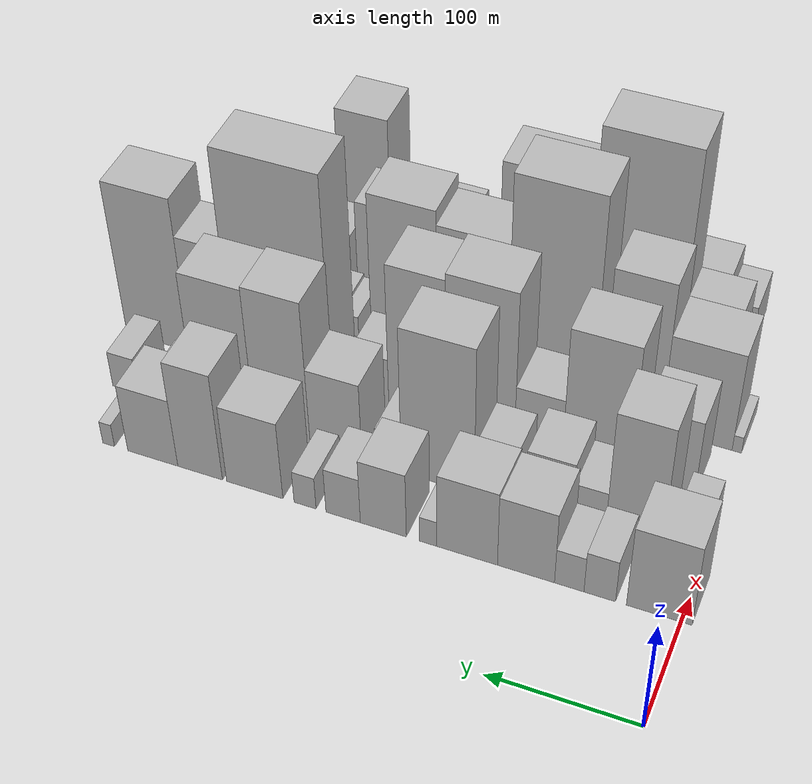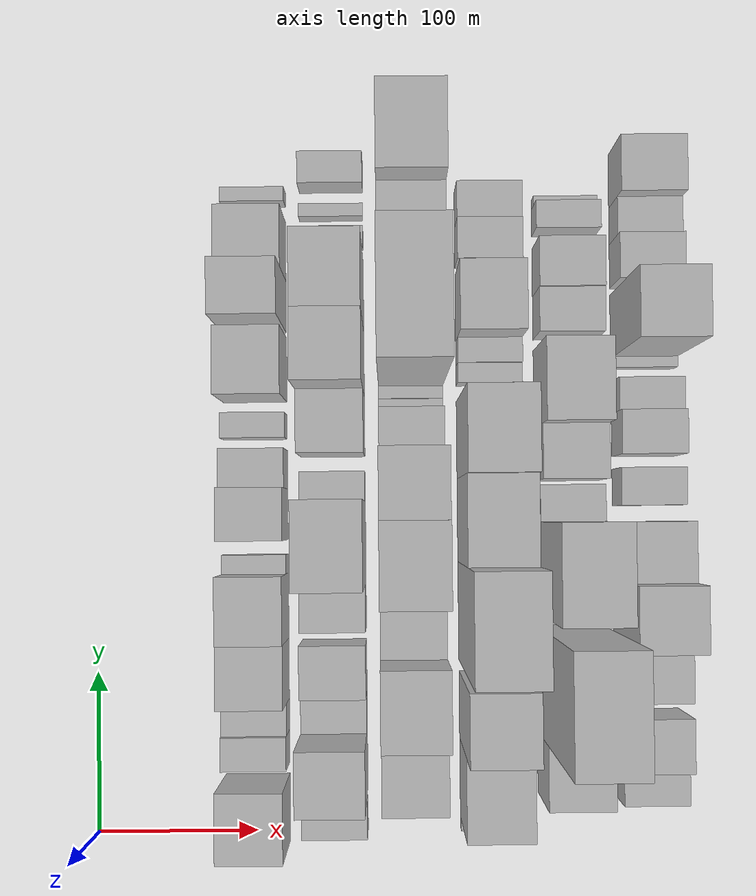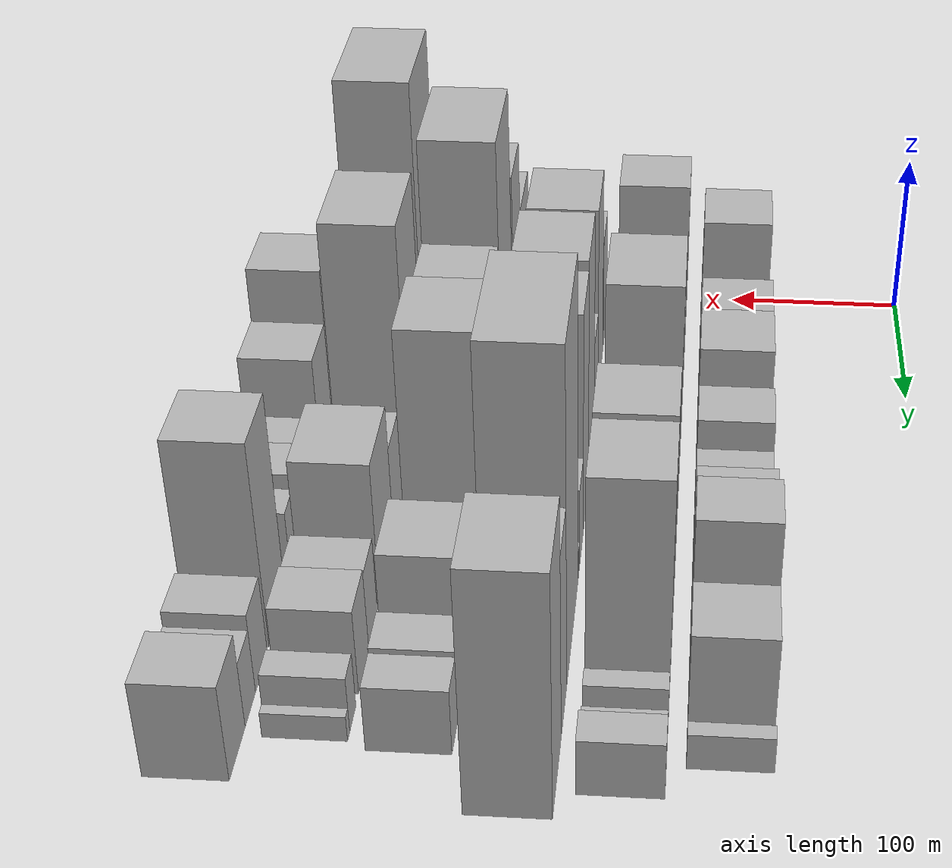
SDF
<sdf version="1.6">
 <world name="default">
  <model name="building_21">
   <static>1</static>
   <pose>100.0000 14.5103 0 0.000000 0.000000 0.000000</pose>
   <link name="link">
    <pose>0 0 37.50 0 0 0</pose>
    <collision name="collision"><geometry><box><size>40.0000 42.1527 75.0000</size></box></geometry></collision>
    <visual name="visual">
     <cast_shadows>0</cast_shadows>
     <geometry><box><size>40.0000 42.1527 75.0000</size></box></geometry>
     <material>
      <script>
       <uri>model://HANNAS_wall/materials/scripts</uri>
       <uri>model://HANNAS_wall/materials/textures</uri>
       <name>vrc/HANNAS_wall</name>
      </script>
     </material>
    </visual>
   </link>
  </model>
  <model name="building_22">
   <static>1</static>
   <pose>100.0000 52.8745 0 0.000000 0.000000 0.000000</pose>
   <link name="link">
    <pose>0 0 19.50 0 0 0</pose>
    <collision name="collision"><geometry><box><size>40.0000 20.5757 39.0000</size></box></geometry></collision>
    <visual name="visual">
     <cast_shadows>0</cast_shadows>
     <geometry><box><size>40.0000 20.5757 39.0000</size></box></geometry>
     <material>
      <script>
       <uri>model://HANNAS_wall/materials/scripts</uri>
       <uri>model://HANNAS_wall/materials/textures</uri>
       <name>vrc/HANNAS_wall</name>
      </script>
     </material>
    </visual>
   </link>
  </model>
  <model name="building_23">
   <static>1</static>
   <pose>100.0000 72.8543 0 0.000000 0.000000 0.000000</pose>
   <link name="link">
    <pose>0 0 16.50 0 0 0</pose>
    <collision name="collision"><geometry><box><size>40.0000 19.3839 33.0000</size></box></geometry></collision>
    <visual name="visual">
     <cast_shadows>0</cast_shadows>
     <geometry><box><size>40.0000 19.3839 33.0000</size></box></geometry>
     <material>
      <script>
       <uri>model://HANNAS_wall/materials/scripts</uri>
       <uri>model://HANNAS_wall/materials/textures</uri>
       <name>vrc/HANNAS_wall</name>
      </script>
     </material>
    </visual>
   </link>
  </model>
  <model name="building_24">
   <static>1</static>
   <pose>100.0000 101.5590 0 0.000000 0.000000 0.000000</pose>
   <link name="link">
    <pose>0 0 33.00 0 0 0</pose>
    <collision name="collision"><geometry><box><size>40.0000 38.0256 66.0000</size></box></geometry></collision>
    <visual name="visual">
     <cast_shadows>0</cast_shadows>
     <geometry><box><size>40.0000 38.0256 66.0000</size></box></geometry>
     <material>
      <script>
       <uri>model://HANNAS_wall/materials/scripts</uri>
       <uri>model://HANNAS_wall/materials/textures</uri>
       <name>vrc/HANNAS_wall</name>
      </script>
     </material>
    </visual>
   </link>
  </model>
  <model name="building_25">
   <static>1</static>
   <pose>100.0000 141.0999 0 0.000000 0.000000 0.000000</pose>
   <link name="link">
    <pose>0 0 34.50 0 0 0</pose>
    <collision name="collision"><geometry><box><size>40.0000 41.0561 69.0000</size></box></geometry></collision>
    <visual name="visual">
     <cast_shadows>0</cast_shadows>
     <geometry><box><size>40.0000 41.0561 69.0000</size></box></geometry>
     <material>
      <script>
       <uri>model://HANNAS_wall/materials/scripts</uri>
       <uri>model://HANNAS_wall/materials/textures</uri>
       <name>vrc/HANNAS_wall</name>
      </script>
     </material>
    </visual>
   </link>
  </model>
  <model name="building_26">
   <static>1</static>
   <pose>100.0000 167.6077 0 0.000000 0.000000 0.000000</pose>
   <link name="link">
    <pose>0 0 12.00 0 0 0</pose>
    <collision name="collision"><geometry><box><size>40.0000 11.9596 24.0000</size></box></geometry></collision>
    <visual name="visual">
     <cast_shadows>0</cast_shadows>
     <geometry><box><size>40.0000 11.9596 24.0000</size></box></geometry>
     <material>
      <script>
       <uri>model://HANNAS_wall/materials/scripts</uri>
       <uri>model://HANNAS_wall/materials/textures</uri>
       <name>vrc/HANNAS_wall</name>
      </script>
     </material>
    </visual>
   </link>
  </model>
  <model name="building_27">
   <static>1</static>
   <pose>100.0000 198.6026 0 0.000000 0.000000 0.000000</pose>
   <link name="link">
    <pose>0 0 30.00 0 0 0</pose>
    <collision name="collision"><geometry><box><size>40.0000 32.0300 60.0000</size></box></geometry></collision>
    <visual name="visual">
     <cast_shadows>0</cast_shadows>
     <geometry><box><size>40.0000 32.0300 60.0000</size></box></geometry>
     <material>
      <script>
       <uri>model://HANNAS_wall/materials/scripts</uri>
       <uri>model://HANNAS_wall/materials/textures</uri>
       <name>vrc/HANNAS_wall</name>
      </script>
     </material>
    </visual>
   </link>
  </model>
  <model name="building_28">
   <static>1</static>
   <pose>100.0000 226.7114 0 0.000000 0.000000 0.000000</pose>
   <link name="link">
    <pose>0 0 21.00 0 0 0</pose>
    <collision name="collision"><geometry><box><size>40.0000 24.1877 42.0000</size></box></geometry></collision>
    <visual name="visual">
     <cast_shadows>0</cast_shadows>
     <geometry><box><size>40.0000 24.1877 42.0000</size></box></geometry>
     <material>
      <script>
       <uri>model://HANNAS_wall/materials/scripts</uri>
       <uri>model://HANNAS_wall/materials/textures</uri>
       <name>vrc/HANNAS_wall</name>
      </script>
     </material>
    </visual>
   </link>
  </model>
  <model name="building_29">
   <static>1</static>
   <pose>100.0000 253.6481 0 0.000000 0.000000 0.000000</pose>
   <link name="link">
    <pose>0 0 15.00 0 0 0</pose>
    <collision name="collision"><geometry><box><size>40.0000 15.6857 30.0000</size></box></geometry></collision>
    <visual name="visual">
     <cast_shadows>0</cast_shadows>
     <geometry><box><size>40.0000 15.6857 30.0000</size></box></geometry>
     <material>
      <script>
       <uri>model://HANNAS_wall/materials/scripts</uri>
       <uri>model://HANNAS_wall/materials/textures</uri>
       <name>vrc/HANNAS_wall</name>
      </script>
     </material>
    </visual>
   </link>
  </model>
  <model name="building_30">
   <static>1</static>
   <pose>100.0000 289.8574 0 0.000000 0.000000 0.000000</pose>
   <link name="link">
    <pose>0 0 36.00 0 0 0</pose>
    <collision name="collision"><geometry><box><size>40.0000 40.7329 72.0000</size></box></geometry></collision>
    <visual name="visual">
     <cast_shadows>0</cast_shadows>
     <geometry><box><size>40.0000 40.7329 72.0000</size></box></geometry>
     <material>
      <script>
       <uri>model://HANNAS_wall/materials/scripts</uri>
       <uri>model://HANNAS_wall/materials/textures</uri>
       <name>vrc/HANNAS_wall</name>
      </script>
     </material>
    </visual>
   </link>
  </model>
  <model name="building_31">
   <static>1</static>
   <pose>100.0000 329.6770 0 0.000000 0.000000 0.000000</pose>
   <link name="link">
    <pose>0 0 49.50 0 0 0</pose>
    <collision name="collision"><geometry><box><size>40.0000 32.9062 99.0000</size></box></geometry></collision>
    <visual name="visual">
     <cast_shadows>0</cast_shadows>
     <geometry><box><size>40.0000 32.9062 99.0000</size></box></geometry>
     <material>
      <script>
       <uri>model://HANNAS_wall/materials/scripts</uri>
       <uri>model://HANNAS_wall/materials/textures</uri>
       <name>vrc/HANNAS_wall</name>
      </script>
     </material>
    </visual>
   </link>
  </model>
  <model name="building_32">
   <static>1</static>
   <pose>100.0000 364.8197 0 0.000000 0.000000 0.000000</pose>
   <link name="link">
    <pose>0 0 31.50 0 0 0</pose>
    <collision name="collision"><geometry><box><size>40.0000 37.3792 63.0000</size></box></geometry></collision>
    <visual name="visual">
     <cast_shadows>0</cast_shadows>
     <geometry><box><size>40.0000 37.3792 63.0000</size></box></geometry>
     <material>
      <script>
       <uri>model://HANNAS_wall/materials/scripts</uri>
       <uri>model://HANNAS_wall/materials/textures</uri>
       <name>vrc/HANNAS_wall</name>
      </script>
     </material>
    </visual>
   </link>
  </model>
  <model name="building_33">
   <static>1</static>
   <pose>100.0000 397.9231 0 0.000000 0.000000 0.000000</pose>
   <link name="link">
    <pose>0 0 10.50 0 0 0</pose>
    <collision name="collision"><geometry><box><size>40.0000 8.8275 21.0000</size></box></geometry></collision>
    <visual name="visual">
     <cast_shadows>0</cast_shadows>
     <geometry><box><size>40.0000 8.8275 21.0000</size></box></geometry>
     <material>
      <script>
       <uri>model://HANNAS_wall/materials/scripts</uri>
       <uri>model://HANNAS_wall/materials/textures</uri>
       <name>vrc/HANNAS_wall</name>
      </script>
     </material>
    </visual>
   </link>
  </model>
  <model name="building_72">
   <static>1</static>
   <pose>149.0000 10.8387 0 0.000000 0.000000 0.000000</pose>
   <link name="link">
    <pose>0 0 18.00 0 0 0</pose>
    <collision name="collision"><geometry><box><size>40.0000 21.0709 36.0000</size></box></geometry></collision>
    <visual name="visual">
     <cast_shadows>0</cast_shadows>
     <geometry><box><size>40.0000 21.0709 36.0000</size></box></geometry>
     <material>
      <script>
       <uri>model://HANNAS_wall/materials/scripts</uri>
       <uri>model://HANNAS_wall/materials/textures</uri>
       <name>vrc/HANNAS_wall</name>
      </script>
     </material>
    </visual>
   </link>
  </model>
  <model name="building_73">
   <static>1</static>
   <pose>149.0000 46.2309 0 0.000000 0.000000 0.000000</pose>
   <link name="link">
    <pose>0 0 57.00 0 0 0</pose>
    <collision name="collision"><geometry><box><size>40.0000 37.7136 114.0000</size></box></geometry></collision>
    <visual name="visual">
     <cast_shadows>0</cast_shadows>
     <geometry><box><size>40.0000 37.7136 114.0000</size></box></geometry>
     <material>
      <script>
       <uri>model://HANNAS_wall/materials/scripts</uri>
       <uri>model://HANNAS_wall/materials/textures</uri>
       <name>vrc/HANNAS_wall</name>
      </script>
     </material>
    </visual>
   </link>
  </model>
  <model name="building_74">
   <static>1</static>
   <pose>149.0000 76.2132 0 0.000000 0.000000 0.000000</pose>
   <link name="link">
    <pose>0 0 19.50 0 0 0</pose>
    <collision name="collision"><geometry><box><size>40.0000 22.2508 39.0000</size></box></geometry></collision>
    <visual name="visual">
     <cast_shadows>0</cast_shadows>
     <geometry><box><size>40.0000 22.2508 39.0000</size></box></geometry>
     <material>
      <script>
       <uri>model://HANNAS_wall/materials/scripts</uri>
       <uri>model://HANNAS_wall/materials/textures</uri>
       <name>vrc/HANNAS_wall</name>
      </script>
     </material>
    </visual>
   </link>
  </model>
  <model name="building_75">
   <static>1</static>
   <pose>149.0000 103.5373 0 0.000000 0.000000 0.000000</pose>
   <link name="link">
    <pose>0 0 28.50 0 0 0</pose>
    <collision name="collision"><geometry><box><size>40.0000 32.3975 57.0000</size></box></geometry></collision>
    <visual name="visual">
     <cast_shadows>0</cast_shadows>
     <geometry><box><size>40.0000 32.3975 57.0000</size></box></geometry>
     <material>
      <script>
       <uri>model://HANNAS_wall/materials/scripts</uri>
       <uri>model://HANNAS_wall/materials/textures</uri>
       <name>vrc/HANNAS_wall</name>
      </script>
     </material>
    </visual>
   </link>
  </model>
  <model name="building_76">
   <static>1</static>
   <pose>149.0000 140.7243 0 0.000000 0.000000 0.000000</pose>
   <link name="link">
    <pose>0 0 24.00 0 0 0</pose>
    <collision name="collision"><geometry><box><size>40.0000 27.9766 48.0000</size></box></geometry></collision>
    <visual name="visual">
     <cast_shadows>0</cast_shadows>
     <geometry><box><size>40.0000 27.9766 48.0000</size></box></geometry>
     <material>
      <script>
       <uri>model://HANNAS_wall/materials/scripts</uri>
       <uri>model://HANNAS_wall/materials/textures</uri>
       <name>vrc/HANNAS_wall</name>
      </script>
     </material>
    </visual>
   </link>
  </model>
  <model name="building_77">
   <static>1</static>
   <pose>149.0000 180.4558 0 0.000000 0.000000 0.000000</pose>
   <link name="link">
    <pose>0 0 67.50 0 0 0</pose>
    <collision name="collision"><geometry><box><size>40.0000 51.4864 135.0000</size></box></geometry></collision>
    <visual name="visual">
     <cast_shadows>0</cast_shadows>
     <geometry><box><size>40.0000 51.4864 135.0000</size></box></geometry>
     <material>
      <script>
       <uri>model://HANNAS_wall/materials/scripts</uri>
       <uri>model://HANNAS_wall/materials/textures</uri>
       <name>vrc/HANNAS_wall</name>
      </script>
     </material>
    </visual>
   </link>
  </model>
  <model name="building_78">
   <static>1</static>
   <pose>149.0000 215.3337 0 0.000000 0.000000 0.000000</pose>
   <link name="link">
    <pose>0 0 18.00 0 0 0</pose>
    <collision name="collision"><geometry><box><size>40.0000 18.2694 36.0000</size></box></geometry></collision>
    <visual name="visual">
     <cast_shadows>0</cast_shadows>
     <geometry><box><size>40.0000 18.2694 36.0000</size></box></geometry>
     <material>
      <script>
       <uri>model://HANNAS_wall/materials/scripts</uri>
       <uri>model://HANNAS_wall/materials/textures</uri>
       <name>vrc/HANNAS_wall</name>
      </script>
     </material>
    </visual>
   </link>
  </model>
  <model name="building_79">
   <static>1</static>
   <pose>149.0000 253.2817 0 0.000000 0.000000 0.000000</pose>
   <link name="link">
    <pose>0 0 36.00 0 0 0</pose>
    <collision name="collision"><geometry><box><size>40.0000 37.6267 72.0000</size></box></geometry></collision>
    <visual name="visual">
     <cast_shadows>0</cast_shadows>
     <geometry><box><size>40.0000 37.6267 72.0000</size></box></geometry>
     <material>
      <script>
       <uri>model://HANNAS_wall/materials/scripts</uri>
       <uri>model://HANNAS_wall/materials/textures</uri>
       <name>vrc/HANNAS_wall</name>
      </script>
     </material>
    </visual>
   </link>
  </model>
  <model name="building_80">
   <static>1</static>
   <pose>149.0000 292.4356 0 0.000000 0.000000 0.000000</pose>
   <link name="link">
    <pose>0 0 66.00 0 0 0</pose>
    <collision name="collision"><geometry><box><size>40.0000 40.6811 132.0000</size></box></geometry></collision>
    <visual name="visual">
     <cast_shadows>0</cast_shadows>
     <geometry><box><size>40.0000 40.6811 132.0000</size></box></geometry>
     <material>
      <script>
       <uri>model://HANNAS_wall/materials/scripts</uri>
       <uri>model://HANNAS_wall/materials/textures</uri>
       <name>vrc/HANNAS_wall</name>
      </script>
     </material>
    </visual>
   </link>
  </model>
  <model name="building_81">
   <static>1</static>
   <pose>149.0000 335.0797 0 0.000000 0.000000 0.000000</pose>
   <link name="link">
    <pose>0 0 64.50 0 0 0</pose>
    <collision name="collision"><geometry><box><size>40.0000 44.6072 129.0000</size></box></geometry></collision>
    <visual name="visual">
     <cast_shadows>0</cast_shadows>
     <geometry><box><size>40.0000 44.6072 129.0000</size></box></geometry>
     <material>
      <script>
       <uri>model://HANNAS_wall/materials/scripts</uri>
       <uri>model://HANNAS_wall/materials/textures</uri>
       <name>vrc/HANNAS_wall</name>
      </script>
     </material>
    </visual>
   </link>
  </model>
  <model name="building_82">
   <static>1</static>
   <pose>149.0000 371.2219 0 0.000000 0.000000 0.000000</pose>
   <link name="link">
    <pose>0 0 12.00 0 0 0</pose>
    <collision name="collision"><geometry><box><size>40.0000 11.6770 24.0000</size></box></geometry></collision>
    <visual name="visual">
     <cast_shadows>0</cast_shadows>
     <geometry><box><size>40.0000 11.6770 24.0000</size></box></geometry>
     <material>
      <script>
       <uri>model://HANNAS_wall/materials/scripts</uri>
       <uri>model://HANNAS_wall/materials/textures</uri>
       <name>vrc/HANNAS_wall</name>
      </script>
     </material>
    </visual>
   </link>
  </model>
  <model name="building_83">
   <static>1</static>
   <pose>149.0000 388.0791 0 0.000000 0.000000 0.000000</pose>
   <link name="link">
    <pose>0 0 9.00 0 0 0</pose>
    <collision name="collision"><geometry><box><size>40.0000 8.0374 18.0000</size></box></geometry></collision>
    <visual name="visual">
     <cast_shadows>0</cast_shadows>
     <geometry><box><size>40.0000 8.0374 18.0000</size></box></geometry>
     <material>
      <script>
       <uri>model://HANNAS_wall/materials/scripts</uri>
       <uri>model://HANNAS_wall/materials/textures</uri>
       <name>vrc/HANNAS_wall</name>
      </script>
     </material>
    </visual>
   </link>
  </model>
  <model name="building_84">
   <static>1</static>
   <pose>149.0000 411.8513 0 0.000000 0.000000 0.000000</pose>
   <link name="link">
    <pose>0 0 16.50 0 0 0</pose>
    <collision name="collision"><geometry><box><size>40.0000 19.5070 33.0000</size></box></geometry></collision>
    <visual name="visual">
     <cast_shadows>0</cast_shadows>
     <geometry><box><size>40.0000 19.5070 33.0000</size></box></geometry>
     <material>
      <script>
       <uri>model://HANNAS_wall/materials/scripts</uri>
       <uri>model://HANNAS_wall/materials/textures</uri>
       <name>vrc/HANNAS_wall</name>
      </script>
     </material>
    </visual>
   </link>
  </model>
  <model name="building_120">
   <static>1</static>
   <pose>198.0000 39.0293 0 0.000000 0.000000 0.000000</pose>
   <link name="link">
    <pose>0 0 36.00 0 0 0</pose>
    <collision name="collision"><geometry><box><size>40.0000 38.1340 72.0000</size></box></geometry></collision>
    <visual name="visual">
     <cast_shadows>0</cast_shadows>
     <geometry><box><size>40.0000 38.1340 72.0000</size></box></geometry>
     <material>
      <script>
       <uri>model://HANNAS_wall/materials/scripts</uri>
       <uri>model://HANNAS_wall/materials/textures</uri>
       <name>vrc/HANNAS_wall</name>
      </script>
     </material>
    </visual>
   </link>
  </model>
  <model name="building_121">
   <static>1</static>
   <pose>198.0000 87.4990 0 0.000000 0.000000 0.000000</pose>
   <link name="link">
    <pose>0 0 61.50 0 0 0</pose>
    <collision name="collision"><geometry><box><size>40.0000 46.8054 123.0000</size></box></geometry></collision>
    <visual name="visual">
     <cast_shadows>0</cast_shadows>
     <geometry><box><size>40.0000 46.8054 123.0000</size></box></geometry>
     <material>
      <script>
       <uri>model://HANNAS_wall/materials/scripts</uri>
       <uri>model://HANNAS_wall/materials/textures</uri>
       <name>vrc/HANNAS_wall</name>
      </script>
     </material>
    </visual>
   </link>
  </model>
  <model name="building_122">
   <static>1</static>
   <pose>198.0000 127.7817 0 0.000000 0.000000 0.000000</pose>
   <link name="link">
    <pose>0 0 28.50 0 0 0</pose>
    <collision name="collision"><geometry><box><size>40.0000 33.7601 57.0000</size></box></geometry></collision>
    <visual name="visual">
     <cast_shadows>0</cast_shadows>
     <geometry><box><size>40.0000 33.7601 57.0000</size></box></geometry>
     <material>
      <script>
       <uri>model://HANNAS_wall/materials/scripts</uri>
       <uri>model://HANNAS_wall/materials/textures</uri>
       <name>vrc/HANNAS_wall</name>
      </script>
     </material>
    </visual>
   </link>
  </model>
  <model name="building_123">
   <static>1</static>
   <pose>198.0000 169.4334 0 0.000000 0.000000 0.000000</pose>
   <link name="link">
    <pose>0 0 70.50 0 0 0</pose>
    <collision name="collision"><geometry><box><size>40.0000 49.5433 141.0000</size></box></geometry></collision>
    <visual name="visual">
     <cast_shadows>0</cast_shadows>
     <geometry><box><size>40.0000 49.5433 141.0000</size></box></geometry>
     <material>
      <script>
       <uri>model://HANNAS_wall/materials/scripts</uri>
       <uri>model://HANNAS_wall/materials/textures</uri>
       <name>vrc/HANNAS_wall</name>
      </script>
     </material>
    </visual>
   </link>
  </model>
  <model name="building_124">
   <static>1</static>
   <pose>198.0000 214.8107 0 0.000000 0.000000 0.000000</pose>
   <link name="link">
    <pose>0 0 67.50 0 0 0</pose>
    <collision name="collision"><geometry><box><size>40.0000 41.2113 135.0000</size></box></geometry></collision>
    <visual name="visual">
     <cast_shadows>0</cast_shadows>
     <geometry><box><size>40.0000 41.2113 135.0000</size></box></geometry>
     <material>
      <script>
       <uri>model://HANNAS_wall/materials/scripts</uri>
       <uri>model://HANNAS_wall/materials/textures</uri>
       <name>vrc/HANNAS_wall</name>
      </script>
     </material>
    </visual>
   </link>
  </model>
  <model name="building_125">
   <static>1</static>
   <pose>198.0000 249.1405 0 0.000000 0.000000 0.000000</pose>
   <link name="link">
    <pose>0 0 24.00 0 0 0</pose>
    <collision name="collision"><geometry><box><size>40.0000 27.4482 48.0000</size></box></geometry></collision>
    <visual name="visual">
     <cast_shadows>0</cast_shadows>
     <geometry><box><size>40.0000 27.4482 48.0000</size></box></geometry>
     <material>
      <script>
       <uri>model://HANNAS_wall/materials/scripts</uri>
       <uri>model://HANNAS_wall/materials/textures</uri>
       <name>vrc/HANNAS_wall</name>
      </script>
     </material>
    </visual>
   </link>
  </model>
  <model name="building_126">
   <static>1</static>
   <pose>198.0000 266.3670 0 0.000000 0.000000 0.000000</pose>
   <link name="link">
    <pose>0 0 7.50 0 0 0</pose>
    <collision name="collision"><geometry><box><size>40.0000 7.0048 15.0000</size></box></geometry></collision>
    <visual name="visual">
     <cast_shadows>0</cast_shadows>
     <geometry><box><size>40.0000 7.0048 15.0000</size></box></geometry>
     <material>
      <script>
       <uri>model://HANNAS_wall/materials/scripts</uri>
       <uri>model://HANNAS_wall/materials/textures</uri>
       <name>vrc/HANNAS_wall</name>
      </script>
     </material>
    </visual>
   </link>
  </model>
  <model name="building_127">
   <static>1</static>
   <pose>198.0000 273.7601 0 0.000000 0.000000 0.000000</pose>
   <link name="link">
    <pose>0 0 9.00 0 0 0</pose>
    <collision name="collision"><geometry><box><size>40.0000 7.7813 18.0000</size></box></geometry></collision>
    <visual name="visual">
     <cast_shadows>0</cast_shadows>
     <geometry><box><size>40.0000 7.7813 18.0000</size></box></geometry>
     <material>
      <script>
       <uri>model://HANNAS_wall/materials/scripts</uri>
       <uri>model://HANNAS_wall/materials/textures</uri>
       <name>vrc/HANNAS_wall</name>
      </script>
     </material>
    </visual>
   </link>
  </model>
  <model name="building_128">
   <static>1</static>
   <pose>198.0000 315.2193 0 0.000000 0.000000 0.000000</pose>
   <link name="link">
    <pose>0 0 97.50 0 0 0</pose>
    <collision name="collision"><geometry><box><size>40.0000 75.1371 195.0000</size></box></geometry></collision>
    <visual name="visual">
     <cast_shadows>0</cast_shadows>
     <geometry><box><size>40.0000 75.1371 195.0000</size></box></geometry>
     <material>
      <script>
       <uri>model://HANNAS_wall/materials/scripts</uri>
       <uri>model://HANNAS_wall/materials/textures</uri>
       <name>vrc/HANNAS_wall</name>
      </script>
     </material>
    </visual>
   </link>
  </model>
  <model name="building_129">
   <static>1</static>
   <pose>198.0000 369.8633 0 0.000000 0.000000 0.000000</pose>
   <link name="link">
    <pose>0 0 54.00 0 0 0</pose>
    <collision name="collision"><geometry><box><size>40.0000 34.1508 108.0000</size></box></geometry></collision>
    <visual name="visual">
     <cast_shadows>0</cast_shadows>
     <geometry><box><size>40.0000 34.1508 108.0000</size></box></geometry>
     <material>
      <script>
       <uri>model://HANNAS_wall/materials/scripts</uri>
       <uri>model://HANNAS_wall/materials/textures</uri>
       <name>vrc/HANNAS_wall</name>
      </script>
     </material>
    </visual>
   </link>
  </model>
  <model name="building_130">
   <static>1</static>
   <pose>198.0000 412.0081 0 0.000000 0.000000 0.000000</pose>
   <link name="link">
    <pose>0 0 70.50 0 0 0</pose>
    <collision name="collision"><geometry><box><size>40.0000 50.1387 141.0000</size></box></geometry></collision>
    <visual name="visual">
     <cast_shadows>0</cast_shadows>
     <geometry><box><size>40.0000 50.1387 141.0000</size></box></geometry>
     <material>
      <script>
       <uri>model://HANNAS_wall/materials/scripts</uri>
       <uri>model://HANNAS_wall/materials/textures</uri>
       <name>vrc/HANNAS_wall</name>
      </script>
     </material>
    </visual>
   </link>
  </model>
  <model name="building_167">
   <static>1</static>
   <pose>247.0000 4.3989 0 0.000000 0.000000 0.000000</pose>
   <link name="link">
    <pose>0 0 7.50 0 0 0</pose>
    <collision name="collision"><geometry><box><size>40.0000 6.5376 15.0000</size></box></geometry></collision>
    <visual name="visual">
     <cast_shadows>0</cast_shadows>
     <geometry><box><size>40.0000 6.5376 15.0000</size></box></geometry>
     <material>
      <script>
       <uri>model://HANNAS_wall/materials/scripts</uri>
       <uri>model://HANNAS_wall/materials/textures</uri>
       <name>vrc/HANNAS_wall</name>
      </script>
     </material>
    </visual>
   </link>
  </model>
  <model name="building_168">
   <static>1</static>
   <pose>247.0000 32.4849 0 0.000000 0.000000 0.000000</pose>
   <link name="link">
    <pose>0 0 45.00 0 0 0</pose>
    <collision name="collision"><geometry><box><size>40.0000 49.6343 90.0000</size></box></geometry></collision>
    <visual name="visual">
     <cast_shadows>0</cast_shadows>
     <geometry><box><size>40.0000 49.6343 90.0000</size></box></geometry>
     <material>
      <script>
       <uri>model://HANNAS_wall/materials/scripts</uri>
       <uri>model://HANNAS_wall/materials/textures</uri>
       <name>vrc/HANNAS_wall</name>
      </script>
     </material>
    </visual>
   </link>
  </model>
  <model name="building_169">
   <static>1</static>
   <pose>247.0000 78.1882 0 0.000000 0.000000 0.000000</pose>
   <link name="link">
    <pose>0 0 67.50 0 0 0</pose>
    <collision name="collision"><geometry><box><size>40.0000 41.7725 135.0000</size></box></geometry></collision>
    <visual name="visual">
     <cast_shadows>0</cast_shadows>
     <geometry><box><size>40.0000 41.7725 135.0000</size></box></geometry>
     <material>
      <script>
       <uri>model://HANNAS_wall/materials/scripts</uri>
       <uri>model://HANNAS_wall/materials/textures</uri>
       <name>vrc/HANNAS_wall</name>
      </script>
     </material>
    </visual>
   </link>
  </model>
  <model name="building_170">
   <static>1</static>
   <pose>247.0000 136.9086 0 0.000000 0.000000 0.000000</pose>
   <link name="link">
    <pose>0 0 96.00 0 0 0</pose>
    <collision name="collision"><geometry><box><size>40.0000 61.6683 192.0000</size></box></geometry></collision>
    <visual name="visual">
     <cast_shadows>0</cast_shadows>
     <geometry><box><size>40.0000 61.6683 192.0000</size></box></geometry>
     <material>
      <script>
       <uri>model://HANNAS_wall/materials/scripts</uri>
       <uri>model://HANNAS_wall/materials/textures</uri>
       <name>vrc/HANNAS_wall</name>
      </script>
     </material>
    </visual>
   </link>
  </model>
  <model name="building_171">
   <static>1</static>
   <pose>247.0000 193.7811 0 0.000000 0.000000 0.000000</pose>
   <link name="link">
    <pose>0 0 66.00 0 0 0</pose>
    <collision name="collision"><geometry><box><size>40.0000 52.0766 132.0000</size></box></geometry></collision>
    <visual name="visual">
     <cast_shadows>0</cast_shadows>
     <geometry><box><size>40.0000 52.0766 132.0000</size></box></geometry>
     <material>
      <script>
       <uri>model://HANNAS_wall/materials/scripts</uri>
       <uri>model://HANNAS_wall/materials/textures</uri>
       <name>vrc/HANNAS_wall</name>
      </script>
     </material>
    </visual>
   </link>
  </model>
  <model name="building_172">
   <static>1</static>
   <pose>247.0000 244.2247 0 0.000000 0.000000 0.000000</pose>
   <link name="link">
    <pose>0 0 72.00 0 0 0</pose>
    <collision name="collision"><geometry><box><size>40.0000 48.8106 144.0000</size></box></geometry></collision>
    <visual name="visual">
     <cast_shadows>0</cast_shadows>
     <geometry><box><size>40.0000 48.8106 144.0000</size></box></geometry>
     <material>
      <script>
       <uri>model://HANNAS_wall/materials/scripts</uri>
       <uri>model://HANNAS_wall/materials/textures</uri>
       <name>vrc/HANNAS_wall</name>
      </script>
     </material>
    </visual>
   </link>
  </model>
  <model name="building_173">
   <static>1</static>
   <pose>247.0000 284.7302 0 0.000000 0.000000 0.000000</pose>
   <link name="link">
    <pose>0 0 13.50 0 0 0</pose>
    <collision name="collision"><geometry><box><size>40.0000 12.2002 27.0000</size></box></geometry></collision>
    <visual name="visual">
     <cast_shadows>0</cast_shadows>
     <geometry><box><size>40.0000 12.2002 27.0000</size></box></geometry>
     <material>
      <script>
       <uri>model://HANNAS_wall/materials/scripts</uri>
       <uri>model://HANNAS_wall/materials/textures</uri>
       <name>vrc/HANNAS_wall</name>
      </script>
     </material>
    </visual>
   </link>
  </model>
  <model name="building_174">
   <static>1</static>
   <pose>247.0000 298.5495 0 0.000000 0.000000 0.000000</pose>
   <link name="link">
    <pose>0 0 15.00 0 0 0</pose>
    <collision name="collision"><geometry><box><size>40.0000 15.4383 30.0000</size></box></geometry></collision>
    <visual name="visual">
     <cast_shadows>0</cast_shadows>
     <geometry><box><size>40.0000 15.4383 30.0000</size></box></geometry>
     <material>
      <script>
       <uri>model://HANNAS_wall/materials/scripts</uri>
       <uri>model://HANNAS_wall/materials/textures</uri>
       <name>vrc/HANNAS_wall</name>
      </script>
     </material>
    </visual>
   </link>
  </model>
  <model name="building_175">
   <static>1</static>
   <pose>247.0000 327.2376 0 0.000000 0.000000 0.000000</pose>
   <link name="link">
    <pose>0 0 36.00 0 0 0</pose>
    <collision name="collision"><geometry><box><size>40.0000 41.9380 72.0000</size></box></geometry></collision>
    <visual name="visual">
     <cast_shadows>0</cast_shadows>
     <geometry><box><size>40.0000 41.9380 72.0000</size></box></geometry>
     <material>
      <script>
       <uri>model://HANNAS_wall/materials/scripts</uri>
       <uri>model://HANNAS_wall/materials/textures</uri>
       <name>vrc/HANNAS_wall</name>
      </script>
     </material>
    </visual>
   </link>
  </model>
  <model name="building_176">
   <static>1</static>
   <pose>247.0000 365.7786 0 0.000000 0.000000 0.000000</pose>
   <link name="link">
    <pose>0 0 21.00 0 0 0</pose>
    <collision name="collision"><geometry><box><size>40.0000 25.1439 42.0000</size></box></geometry></collision>
    <visual name="visual">
     <cast_shadows>0</cast_shadows>
     <geometry><box><size>40.0000 25.1439 42.0000</size></box></geometry>
     <material>
      <script>
       <uri>model://HANNAS_wall/materials/scripts</uri>
       <uri>model://HANNAS_wall/materials/textures</uri>
       <name>vrc/HANNAS_wall</name>
      </script>
     </material>
    </visual>
   </link>
  </model>
  <model name="building_177">
   <static>1</static>
   <pose>247.0000 389.7667 0 0.000000 0.000000 0.000000</pose>
   <link name="link">
    <pose>0 0 19.50 0 0 0</pose>
    <collision name="collision"><geometry><box><size>40.0000 22.8322 39.0000</size></box></geometry></collision>
    <visual name="visual">
     <cast_shadows>0</cast_shadows>
     <geometry><box><size>40.0000 22.8322 39.0000</size></box></geometry>
     <material>
      <script>
       <uri>model://HANNAS_wall/materials/scripts</uri>
       <uri>model://HANNAS_wall/materials/textures</uri>
       <name>vrc/HANNAS_wall</name>
      </script>
     </material>
    </visual>
   </link>
  </model>
  <model name="building_217">
   <static>1</static>
   <pose>296.0000 41.6876 0 0.000000 0.000000 0.000000</pose>
   <link name="link">
    <pose>0 0 36.00 0 0 0</pose>
    <collision name="collision"><geometry><box><size>40.0000 38.6301 72.0000</size></box></geometry></collision>
    <visual name="visual">
     <cast_shadows>0</cast_shadows>
     <geometry><box><size>40.0000 38.6301 72.0000</size></box></geometry>
     <material>
      <script>
       <uri>model://HANNAS_wall/materials/scripts</uri>
       <uri>model://HANNAS_wall/materials/textures</uri>
       <name>vrc/HANNAS_wall</name>
      </script>
     </material>
    </visual>
   </link>
  </model>
  <model name="building_218">
   <static>1</static>
   <pose>296.0000 94.2901 0 0.000000 0.000000 0.000000</pose>
   <link name="link">
    <pose>0 0 102.00 0 0 0</pose>
    <collision name="collision"><geometry><box><size>40.0000 66.5749 204.0000</size></box></geometry></collision>
    <visual name="visual">
     <cast_shadows>0</cast_shadows>
     <geometry><box><size>40.0000 66.5749 204.0000</size></box></geometry>
     <material>
      <script>
       <uri>model://HANNAS_wall/materials/scripts</uri>
       <uri>model://HANNAS_wall/materials/textures</uri>
       <name>vrc/HANNAS_wall</name>
      </script>
     </material>
    </visual>
   </link>
  </model>
  <model name="building_219">
   <static>1</static>
   <pose>296.0000 163.9563 0 0.000000 0.000000 0.000000</pose>
   <link name="link">
    <pose>0 0 78.00 0 0 0</pose>
    <collision name="collision"><geometry><box><size>40.0000 56.7575 156.0000</size></box></geometry></collision>
    <visual name="visual">
     <cast_shadows>0</cast_shadows>
     <geometry><box><size>40.0000 56.7575 156.0000</size></box></geometry>
     <material>
      <script>
       <uri>model://HANNAS_wall/materials/scripts</uri>
       <uri>model://HANNAS_wall/materials/textures</uri>
       <name>vrc/HANNAS_wall</name>
      </script>
     </material>
    </visual>
   </link>
  </model>
  <model name="building_220">
   <static>1</static>
   <pose>296.0000 203.6893 0 0.000000 0.000000 0.000000</pose>
   <link name="link">
    <pose>0 0 19.50 0 0 0</pose>
    <collision name="collision"><geometry><box><size>40.0000 22.7086 39.0000</size></box></geometry></collision>
    <visual name="visual">
     <cast_shadows>0</cast_shadows>
     <geometry><box><size>40.0000 22.7086 39.0000</size></box></geometry>
     <material>
      <script>
       <uri>model://HANNAS_wall/materials/scripts</uri>
       <uri>model://HANNAS_wall/materials/textures</uri>
       <name>vrc/HANNAS_wall</name>
      </script>
     </material>
    </visual>
   </link>
  </model>
  <model name="building_221">
   <static>1</static>
   <pose>296.0000 234.7030 0 0.000000 0.000000 0.000000</pose>
   <link name="link">
    <pose>0 0 30.00 0 0 0</pose>
    <collision name="collision"><geometry><box><size>40.0000 33.3189 60.0000</size></box></geometry></collision>
    <visual name="visual">
     <cast_shadows>0</cast_shadows>
     <geometry><box><size>40.0000 33.3189 60.0000</size></box></geometry>
     <material>
      <script>
       <uri>model://HANNAS_wall/materials/scripts</uri>
       <uri>model://HANNAS_wall/materials/textures</uri>
       <name>vrc/HANNAS_wall</name>
      </script>
     </material>
    </visual>
   </link>
  </model>
  <model name="building_222">
   <static>1</static>
   <pose>296.0000 275.8611 0 0.000000 0.000000 0.000000</pose>
   <link name="link">
    <pose>0 0 43.50 0 0 0</pose>
    <collision name="collision"><geometry><box><size>40.0000 48.9974 87.0000</size></box></geometry></collision>
    <visual name="visual">
     <cast_shadows>0</cast_shadows>
     <geometry><box><size>40.0000 48.9974 87.0000</size></box></geometry>
     <material>
      <script>
       <uri>model://HANNAS_wall/materials/scripts</uri>
       <uri>model://HANNAS_wall/materials/textures</uri>
       <name>vrc/HANNAS_wall</name>
      </script>
     </material>
    </visual>
   </link>
  </model>
  <model name="building_223">
   <static>1</static>
   <pose>296.0000 320.9240 0 0.000000 0.000000 0.000000</pose>
   <link name="link">
    <pose>0 0 24.00 0 0 0</pose>
    <collision name="collision"><geometry><box><size>40.0000 27.1284 48.0000</size></box></geometry></collision>
    <visual name="visual">
     <cast_shadows>0</cast_shadows>
     <geometry><box><size>40.0000 27.1284 48.0000</size></box></geometry>
     <material>
      <script>
       <uri>model://HANNAS_wall/materials/scripts</uri>
       <uri>model://HANNAS_wall/materials/textures</uri>
       <name>vrc/HANNAS_wall</name>
      </script>
     </material>
    </visual>
   </link>
  </model>
  <model name="building_224">
   <static>1</static>
   <pose>296.0000 349.6935 0 0.000000 0.000000 0.000000</pose>
   <link name="link">
    <pose>0 0 25.50 0 0 0</pose>
    <collision name="collision"><geometry><box><size>40.0000 30.4106 51.0000</size></box></geometry></collision>
    <visual name="visual">
     <cast_shadows>0</cast_shadows>
     <geometry><box><size>40.0000 30.4106 51.0000</size></box></geometry>
     <material>
      <script>
       <uri>model://HANNAS_wall/materials/scripts</uri>
       <uri>model://HANNAS_wall/materials/textures</uri>
       <name>vrc/HANNAS_wall</name>
      </script>
     </material>
    </visual>
   </link>
  </model>
  <model name="building_225">
   <static>1</static>
   <pose>296.0000 381.4629 0 0.000000 0.000000 0.000000</pose>
   <link name="link">
    <pose>0 0 16.50 0 0 0</pose>
    <collision name="collision"><geometry><box><size>40.0000 17.1281 33.0000</size></box></geometry></collision>
    <visual name="visual">
     <cast_shadows>0</cast_shadows>
     <geometry><box><size>40.0000 17.1281 33.0000</size></box></geometry>
     <material>
      <script>
       <uri>model://HANNAS_wall/materials/scripts</uri>
       <uri>model://HANNAS_wall/materials/textures</uri>
       <name>vrc/HANNAS_wall</name>
      </script>
     </material>
    </visual>
   </link>
  </model>
  <model name="building_226">
   <static>1</static>
   <pose>296.0000 393.0669 0 0.000000 0.000000 0.000000</pose>
   <link name="link">
    <pose>0 0 7.50 0 0 0</pose>
    <collision name="collision"><geometry><box><size>40.0000 6.0800 15.0000</size></box></geometry></collision>
    <visual name="visual">
     <cast_shadows>0</cast_shadows>
     <geometry><box><size>40.0000 6.0800 15.0000</size></box></geometry>
     <material>
      <script>
       <uri>model://HANNAS_wall/materials/scripts</uri>
       <uri>model://HANNAS_wall/materials/textures</uri>
       <name>vrc/HANNAS_wall</name>
      </script>
     </material>
    </visual>
   </link>
  </model>
  <model name="building_260">
   <static>1</static>
   <pose>345.0000 30.4651 0 0.000000 0.000000 0.000000</pose>
   <link name="link">
    <pose>0 0 19.50 0 0 0</pose>
    <collision name="collision"><geometry><box><size>40.0000 21.9901 39.0000</size></box></geometry></collision>
    <visual name="visual">
     <cast_shadows>0</cast_shadows>
     <geometry><box><size>40.0000 21.9901 39.0000</size></box></geometry>
     <material>
      <script>
       <uri>model://HANNAS_wall/materials/scripts</uri>
       <uri>model://HANNAS_wall/materials/textures</uri>
       <name>vrc/HANNAS_wall</name>
      </script>
     </material>
    </visual>
   </link>
  </model>
  <model name="building_261">
   <static>1</static>
   <pose>345.0000 57.8283 0 0.000000 0.000000 0.000000</pose>
   <link name="link">
    <pose>0 0 28.50 0 0 0</pose>
    <collision name="collision"><geometry><box><size>40.0000 32.7363 57.0000</size></box></geometry></collision>
    <visual name="visual">
     <cast_shadows>0</cast_shadows>
     <geometry><box><size>40.0000 32.7363 57.0000</size></box></geometry>
     <material>
      <script>
       <uri>model://HANNAS_wall/materials/scripts</uri>
       <uri>model://HANNAS_wall/materials/textures</uri>
       <name>vrc/HANNAS_wall</name>
      </script>
     </material>
    </visual>
   </link>
  </model>
  <model name="building_262">
   <static>1</static>
   <pose>345.0000 99.7061 0 0.000000 0.000000 0.000000</pose>
   <link name="link">
    <pose>0 0 28.50 0 0 0</pose>
    <collision name="collision"><geometry><box><size>40.0000 33.0192 57.0000</size></box></geometry></collision>
    <visual name="visual">
     <cast_shadows>0</cast_shadows>
     <geometry><box><size>40.0000 33.0192 57.0000</size></box></geometry>
     <material>
      <script>
       <uri>model://HANNAS_wall/materials/scripts</uri>
       <uri>model://HANNAS_wall/materials/textures</uri>
       <name>vrc/HANNAS_wall</name>
      </script>
     </material>
    </visual>
   </link>
  </model>
  <model name="building_263">
   <static>1</static>
   <pose>345.0000 135.8650 0 0.000000 0.000000 0.000000</pose>
   <link name="link">
    <pose>0 0 52.50 0 0 0</pose>
    <collision name="collision"><geometry><box><size>40.0000 39.2986 105.0000</size></box></geometry></collision>
    <visual name="visual">
     <cast_shadows>0</cast_shadows>
     <geometry><box><size>40.0000 39.2986 105.0000</size></box></geometry>
     <material>
      <script>
       <uri>model://HANNAS_wall/materials/scripts</uri>
       <uri>model://HANNAS_wall/materials/textures</uri>
       <name>vrc/HANNAS_wall</name>
      </script>
     </material>
    </visual>
   </link>
  </model>
  <model name="building_264">
   <static>1</static>
   <pose>345.0000 173.7419 0 0.000000 0.000000 0.000000</pose>
   <link name="link">
    <pose>0 0 36.00 0 0 0</pose>
    <collision name="collision"><geometry><box><size>40.0000 36.4552 72.0000</size></box></geometry></collision>
    <visual name="visual">
     <cast_shadows>0</cast_shadows>
     <geometry><box><size>40.0000 36.4552 72.0000</size></box></geometry>
     <material>
      <script>
       <uri>model://HANNAS_wall/materials/scripts</uri>
       <uri>model://HANNAS_wall/materials/textures</uri>
       <name>vrc/HANNAS_wall</name>
      </script>
     </material>
    </visual>
   </link>
  </model>
  <model name="building_265">
   <static>1</static>
   <pose>345.0000 213.4887 0 0.000000 0.000000 0.000000</pose>
   <link name="link">
    <pose>0 0 21.00 0 0 0</pose>
    <collision name="collision"><geometry><box><size>40.0000 23.0385 42.0000</size></box></geometry></collision>
    <visual name="visual">
     <cast_shadows>0</cast_shadows>
     <geometry><box><size>40.0000 23.0385 42.0000</size></box></geometry>
     <material>
      <script>
       <uri>model://HANNAS_wall/materials/scripts</uri>
       <uri>model://HANNAS_wall/materials/textures</uri>
       <name>vrc/HANNAS_wall</name>
      </script>
     </material>
    </visual>
   </link>
  </model>
  <model name="building_266">
   <static>1</static>
   <pose>345.0000 246.4763 0 0.000000 0.000000 0.000000</pose>
   <link name="link">
    <pose>0 0 24.00 0 0 0</pose>
    <collision name="collision"><geometry><box><size>40.0000 26.9367 48.0000</size></box></geometry></collision>
    <visual name="visual">
     <cast_shadows>0</cast_shadows>
     <geometry><box><size>40.0000 26.9367 48.0000</size></box></geometry>
     <material>
      <script>
       <uri>model://HANNAS_wall/materials/scripts</uri>
       <uri>model://HANNAS_wall/materials/textures</uri>
       <name>vrc/HANNAS_wall</name>
      </script>
     </material>
    </visual>
   </link>
  </model>
  <model name="building_267">
   <static>1</static>
   <pose>345.0000 270.0936 0 0.000000 0.000000 0.000000</pose>
   <link name="link">
    <pose>0 0 19.50 0 0 0</pose>
    <collision name="collision"><geometry><box><size>40.0000 20.2980 39.0000</size></box></geometry></collision>
    <visual name="visual">
     <cast_shadows>0</cast_shadows>
     <geometry><box><size>40.0000 20.2980 39.0000</size></box></geometry>
     <material>
      <script>
       <uri>model://HANNAS_wall/materials/scripts</uri>
       <uri>model://HANNAS_wall/materials/textures</uri>
       <name>vrc/HANNAS_wall</name>
      </script>
     </material>
    </visual>
   </link>
  </model>
  <model name="building_268">
   <static>1</static>
   <pose>345.0000 291.6131 0 0.000000 0.000000 0.000000</pose>
   <link name="link">
    <pose>0 0 7.50 0 0 0</pose>
    <collision name="collision"><geometry><box><size>40.0000 6.7409 15.0000</size></box></geometry></collision>
    <visual name="visual">
     <cast_shadows>0</cast_shadows>
     <geometry><box><size>40.0000 6.7409 15.0000</size></box></geometry>
     <material>
      <script>
       <uri>model://HANNAS_wall/materials/scripts</uri>
       <uri>model://HANNAS_wall/materials/textures</uri>
       <name>vrc/HANNAS_wall</name>
      </script>
     </material>
    </visual>
   </link>
  </model>
  <model name="building_269">
   <static>1</static>
   <pose>345.0000 315.1895 0 0.000000 0.000000 0.000000</pose>
   <link name="link">
    <pose>0 0 61.50 0 0 0</pose>
    <collision name="collision"><geometry><box><size>40.0000 40.4119 123.0000</size></box></geometry></collision>
    <visual name="visual">
     <cast_shadows>0</cast_shadows>
     <geometry><box><size>40.0000 40.4119 123.0000</size></box></geometry>
     <material>
      <script>
       <uri>model://HANNAS_wall/materials/scripts</uri>
       <uri>model://HANNAS_wall/materials/textures</uri>
       <name>vrc/HANNAS_wall</name>
      </script>
     </material>
    </visual>
   </link>
  </model>
  <model name="building_270">
   <static>1</static>
   <pose>345.0000 353.2759 0 0.000000 0.000000 0.000000</pose>
   <link name="link">
    <pose>0 0 24.00 0 0 0</pose>
    <collision name="collision"><geometry><box><size>40.0000 27.7610 48.0000</size></box></geometry></collision>
    <visual name="visual">
     <cast_shadows>0</cast_shadows>
     <geometry><box><size>40.0000 27.7610 48.0000</size></box></geometry>
     <material>
      <script>
       <uri>model://HANNAS_wall/materials/scripts</uri>
       <uri>model://HANNAS_wall/materials/textures</uri>
       <name>vrc/HANNAS_wall</name>
      </script>
     </material>
    </visual>
   </link>
  </model>
  <model name="building_271">
   <static>1</static>
   <pose>345.0000 378.7907 0 0.000000 0.000000 0.000000</pose>
   <link name="link">
    <pose>0 0 19.50 0 0 0</pose>
    <collision name="collision"><geometry><box><size>40.0000 23.2686 39.0000</size></box></geometry></collision>
    <visual name="visual">
     <cast_shadows>0</cast_shadows>
     <geometry><box><size>40.0000 23.2686 39.0000</size></box></geometry>
     <material>
      <script>
       <uri>model://HANNAS_wall/materials/scripts</uri>
       <uri>model://HANNAS_wall/materials/textures</uri>
       <name>vrc/HANNAS_wall</name>
      </script>
     </material>
    </visual>
   </link>
  </model>
  <model name="building_272">
   <static>1</static>
   <pose>345.0000 407.4159 0 0.000000 0.000000 0.000000</pose>
   <link name="link">
    <pose>0 0 28.50 0 0 0</pose>
    <collision name="collision"><geometry><box><size>40.0000 33.9817 57.0000</size></box></geometry></collision>
    <visual name="visual">
     <cast_shadows>0</cast_shadows>
     <geometry><box><size>40.0000 33.9817 57.0000</size></box></geometry>
     <material>
      <script>
       <uri>model://HANNAS_wall/materials/scripts</uri>
       <uri>model://HANNAS_wall/materials/textures</uri>
       <name>vrc/HANNAS_wall</name>
      </script>
     </material>
    </visual>
   </link>
  </model>
 </world>
</sdf>
